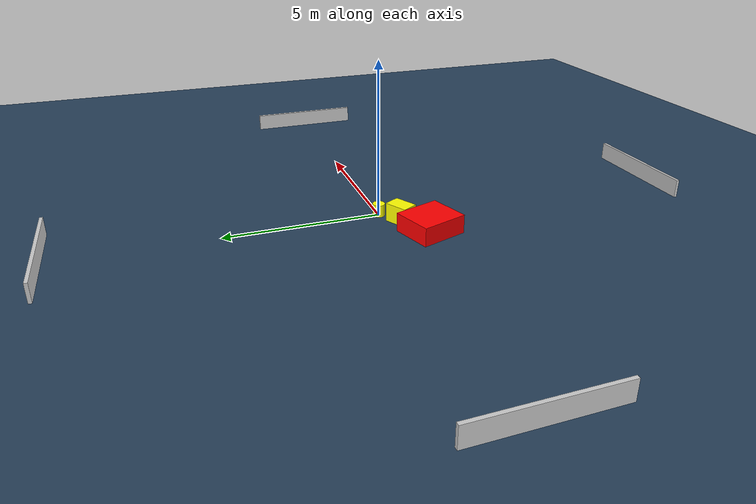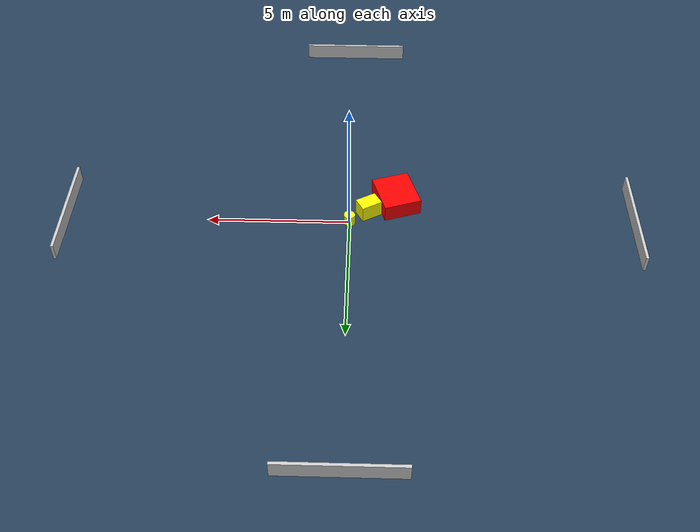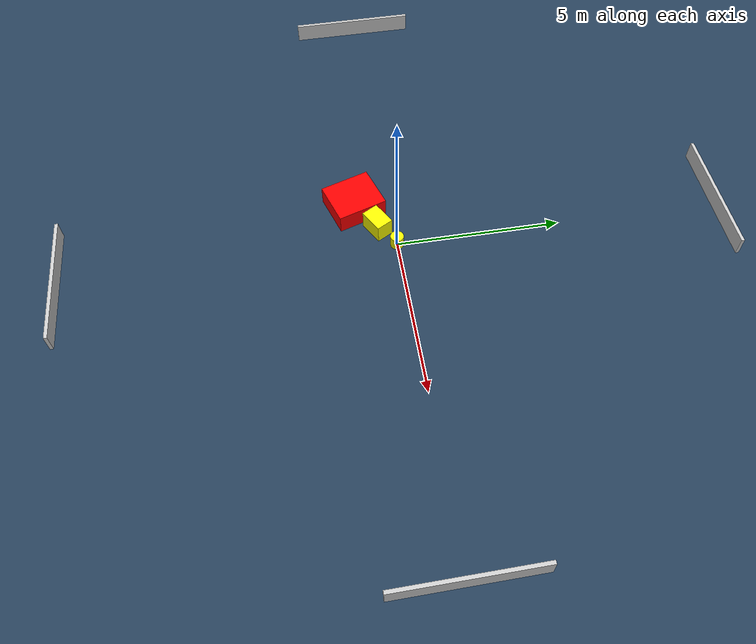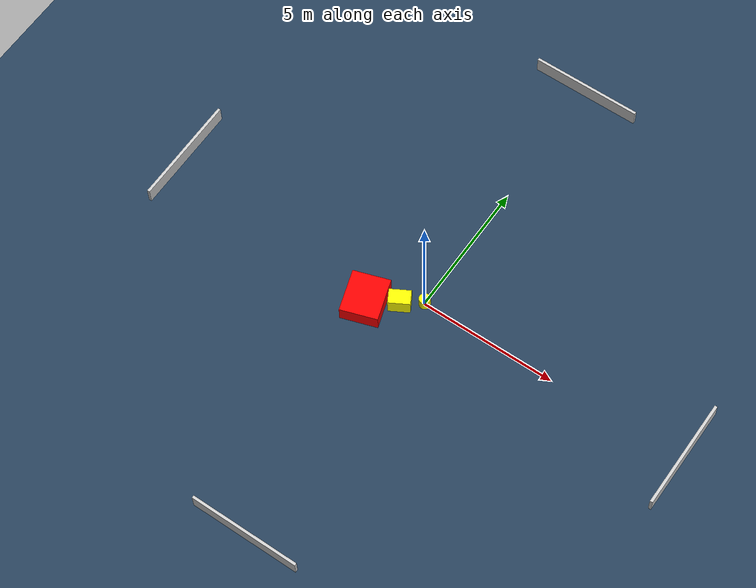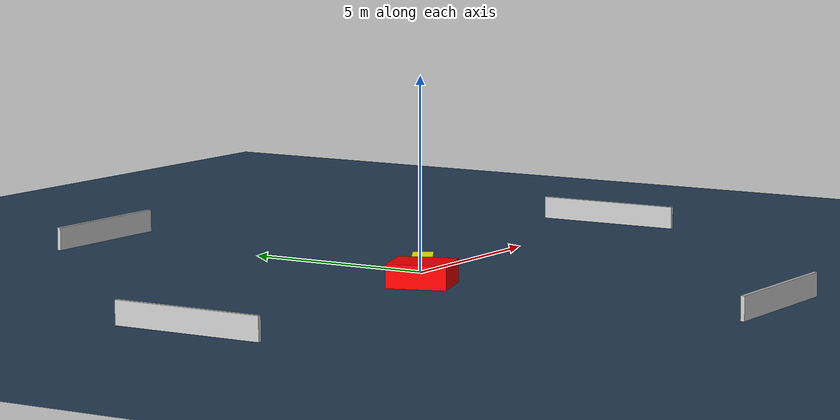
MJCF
<?xml version="1.0" ?>
<mujoco model="generated_environment">
  <option timestep="0.01" integrator="RK4" cone="elliptic"/>
  <default>
    <geom density="1"/>
  </default>
  <asset>
    <texture builtin="gradient" height="3072" name="skybox" rgb1="0.3 0.5 0.7" rgb2="0 0 0" type="skybox" width="512"/>
    <texture builtin="checker" height="300" name="groundplane" rgb1="0.2 0.3 0.4" rgb2="0.1 0.2 0.3" type="2d" width="300"/>
    <material name="groundplane" reflectance="0.2" texrepeat="5 5" texture="groundplane"/>
  </asset>
  <worldbody>
    <light dir="0 0 -1" directional="true" pos="0 0 1.5"/>
    <geom condim="3" friction="0.5 0.005 0.001" material="groundplane" name="floor" pos="0 0 0" size="0 0 0.05" type="plane"/>
    <body name="walls">
      <geom name="wall_1" condim="4" pos="-10.0 0.0 0.3" rgba="0.800000011920929 0.800000011920929 0.800000011920929 1.0" size="0.05 2.0 0.3" type="box"/>
      <geom name="wall_2" condim="4" pos="10.0 0.0 0.3" rgba="0.800000011920929 0.800000011920929 0.800000011920929 1.0" size="0.05 2.0 0.3" type="box"/>
      <geom name="wall_3" condim="4" pos="0.0 -10.0 0.3" rgba="0.800000011920929 0.800000011920929 0.800000011920929 1.0" size="2.0 0.05 0.3" type="box"/>
      <geom name="wall_4" condim="4" pos="0.0 10.0 0.3" rgba="0.800000011920929 0.800000011920929 0.800000011920929 1.0" size="2.0 0.05 0.3" type="box"/>
    </body>
    <body name="robot">
      <joint name="joint_x" type="slide" pos="0 0 0" axis="1 0 0"/>
      <joint name="joint_y" type="slide" pos="0 0 0" axis="0 1 0"/>
      <geom name="robot" type="cylinder" pos="0.0 0.0 0.2" size="0.2 0.2 0.0" mass="5.0" friction="1.0 0.005 0.0001" condim="4" rgba="1.0 1.0 0.0 1.0"/>
    </body>
    <body name="obstacle_1_movable">
      <geom name="obstacle_1_movable" condim="4" pos="-0.6715739906457193 -0.49195618464432084 0.3" euler="0 0 29.19578045957962" friction="0.0 0.005 0.001" rgba="1.0 1.0 0.0 1.0" size="0.38299105106821885 0.2634906507207282 0.3" type="box" mass="0.1"/>
      <joint type="free"/>
    </body>
    <body name="obstacle_2_static">
      <geom name="obstacle_2_static" condim="4" pos="-1.650187126373479 -1.0802736366998704 0.3" euler="0 0 108.05168697881362" friction="0.0 0.005 0.001" rgba="1.0 0.0 0.0 1.0" size="0.7684596425977857 0.6707772476360561 0.3" type="box"/>
    </body>
  </worldbody>
  <actuator>
    <motor name="actuator_x" joint="joint_x" gear="1" ctrlrange="-1 1"/>
    <motor name="actuator_y" joint="joint_y" gear="1" ctrlrange="-1 1"/>
  </actuator>
</mujoco>
